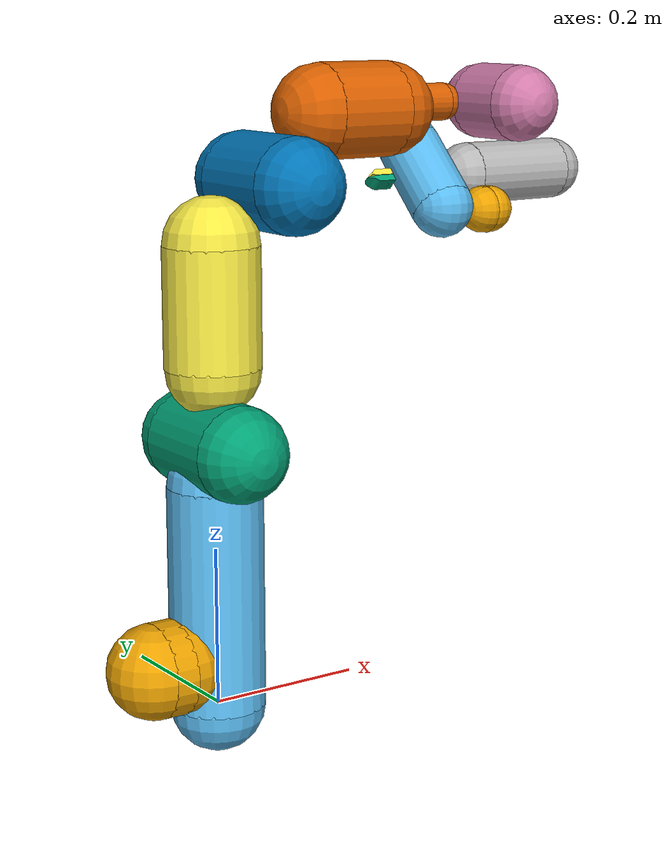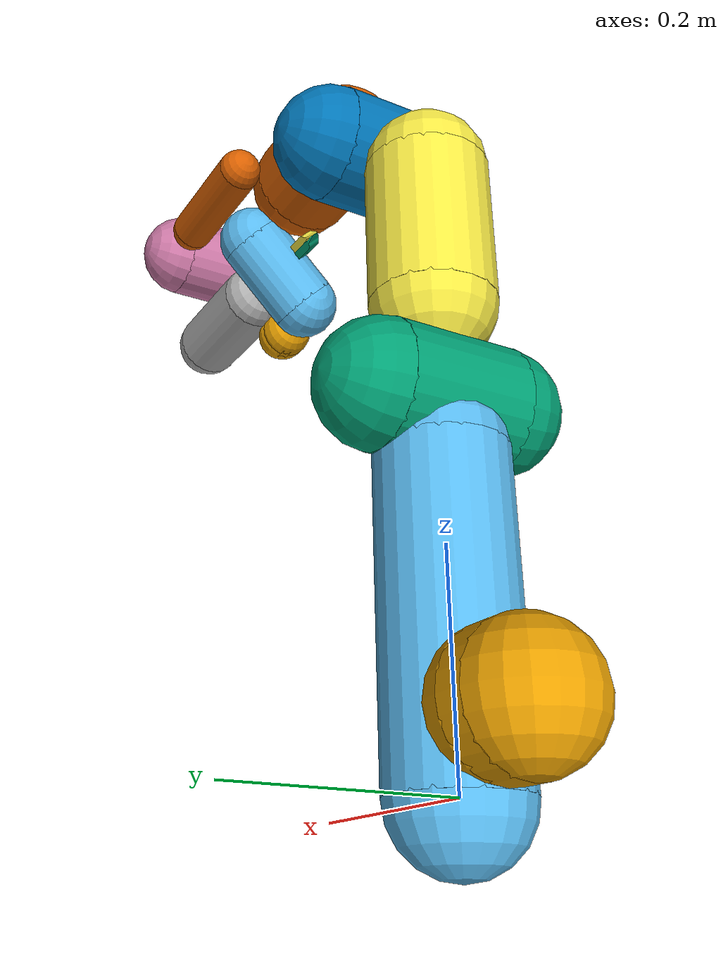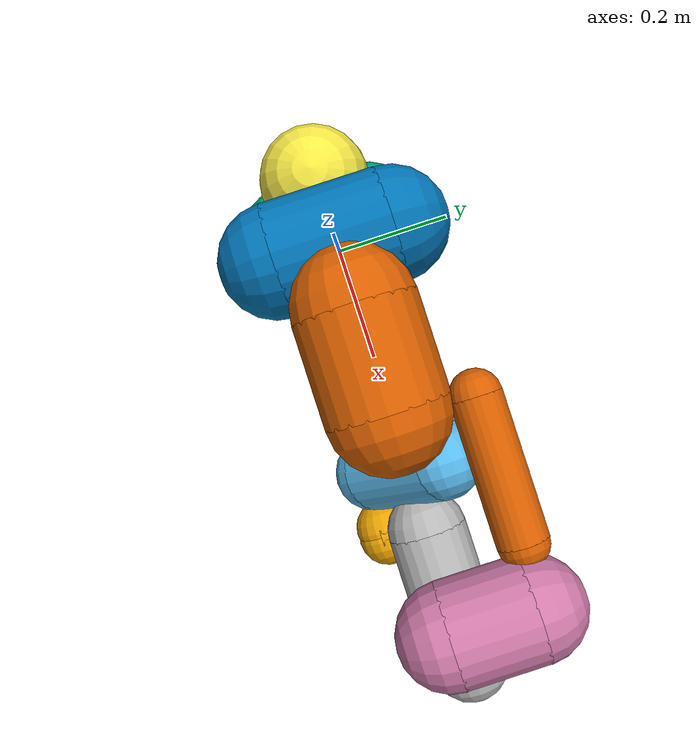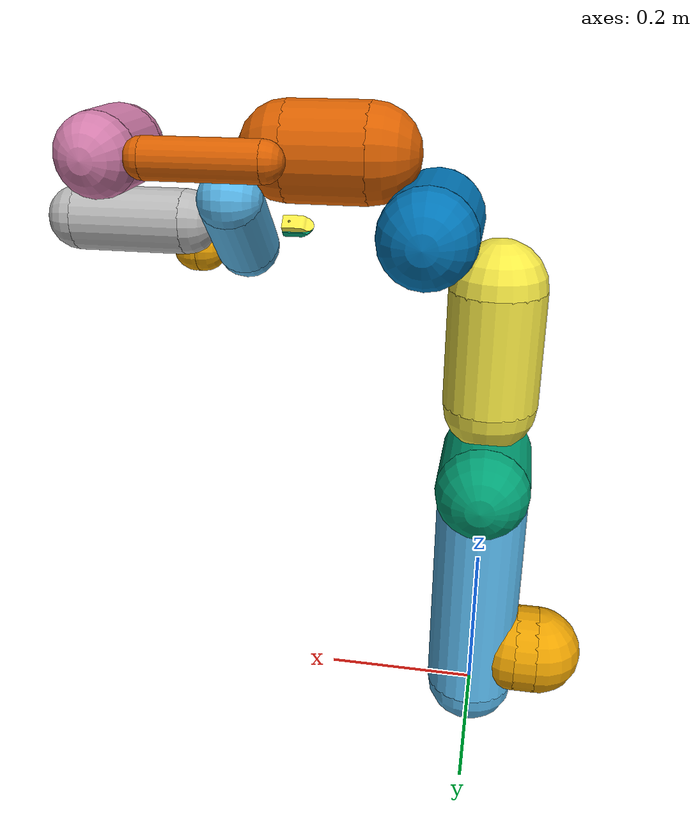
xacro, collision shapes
<?xml version="1.0" encoding="utf-8"?>
<robot xmlns:xacro="http://www.ros.org/wiki/xacro" name="panda">
  <xacro:include filename="$(find franka_description)/robots/panda_arm.xacro"/>
  <xacro:include filename="$(find franka_description)/robots/hand.xacro"/>
  <xacro:panda_arm safety_distance="0.0"/>
  <xacro:hand ns="panda" rpy="0 0 ${-pi/4}" connected_to="panda_link8" safety_distance="0.0"/>
</robot>

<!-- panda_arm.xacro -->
<robot xmlns:xacro="http://www.ros.org/wiki/xacro" name="panda">
  <!-- safety_distance: Minimum safety distance in [m] by which the collision volumes are expanded and which is enforced during robot motions -->
  <!-- arm_id: Namespace of the panda arm. Serves to differentiate between arms in case of multiple instances. -->
  <xacro:macro name="panda_arm" params="arm_id:='panda' description_pkg:='franka_description' connected_to:='' xyz:='0 0 0' rpy:='0 0 0' safety_distance:=0">
    <xacro:unless value="${not connected_to}">
      <joint name="${arm_id}_joint_${connected_to}" type="fixed">
        <parent link="${connected_to}"/>
        <child link="${arm_id}_link0"/>
        <origin rpy="${rpy}" xyz="${xyz}"/>
      </joint>
    </xacro:unless>
    <link name="${arm_id}_link0">
      <visual>
        <geometry>
          <mesh filename="package://${description_pkg}/meshes/visual/link0.dae"/>
        </geometry>
      </visual>
      <collision>
        <origin xyz="-0.075 0 0.06" rpy="0 ${pi/2} 0"/>
        <geometry>
          <cylinder radius="${0.06+safety_distance}" length="0.03" />
        </geometry>
      </collision>
      <collision>
        <origin xyz="-0.06 0 0.06" rpy="0 0 0"/>
        <geometry>
          <sphere radius="${0.06+safety_distance}" />
        </geometry>
      </collision>
      <collision>
        <origin xyz="-0.09 0 0.06" rpy="0 0 0"/>
        <geometry>
          <sphere radius="${0.06+safety_distance}" />
        </geometry>
      </collision>
    </link>
    <link name="${arm_id}_link1">
      <visual>
        <geometry>
          <mesh filename="package://${description_pkg}/meshes/visual/link1.dae"/>
        </geometry>
      </visual>
      <collision>
        <origin xyz="0 0 -0.1915" rpy="0 0 0"/>
        <geometry>
          <cylinder radius="${0.06+safety_distance}" length="0.2830" />
        </geometry>
      </collision>
      <collision>
        <origin xyz="0 0 -0.333" rpy="0 0 0"/>
        <geometry>
          <sphere radius="${0.06+safety_distance}" />
        </geometry>
      </collision>
      <collision>
        <origin xyz="0 0 -0.05" rpy="0 0 0"/>
        <geometry>
          <sphere radius="${0.06+safety_distance}" />
        </geometry>
      </collision>
    </link>
    <joint name="${arm_id}_joint1" type="revolute">
      <safety_controller k_position="100.0" k_velocity="40.0" soft_lower_limit="-2.78" soft_upper_limit="2.78"/>
      <origin rpy="0 0 0" xyz="0 0 0.333"/>
      <parent link="${arm_id}_link0"/>
      <child link="${arm_id}_link1"/>
      <axis xyz="0 0 1"/>
      <limit effort="87" lower="-2.8973" upper="2.8973" velocity="2.1750"/>
    </joint>
    <link name="${arm_id}_link2">
      <visual>
        <geometry>
          <mesh filename="package://${description_pkg}/meshes/visual/link2.dae"/>
        </geometry>
      </visual>
      <collision>
        <origin xyz="0 0 0" rpy="0 0 0"/>
        <geometry>
          <cylinder radius="${0.06+safety_distance}" length="0.12" />
        </geometry>
      </collision>
      <collision>
        <origin xyz="0 0 -0.06" rpy="0 0 0"/>
        <geometry>
          <sphere radius="${0.06+safety_distance}" />
        </geometry>
      </collision>
      <collision>
        <origin xyz="0 0 0.06" rpy="0 0 0"/>
        <geometry>
          <sphere radius="${0.06+safety_distance}" />
        </geometry>
      </collision>
    </link>
    <joint name="${arm_id}_joint2" type="revolute">
      <safety_controller k_position="100.0" k_velocity="40.0" soft_lower_limit="-1.66" soft_upper_limit="1.66"/>
      <origin rpy="${-pi/2} 0 0" xyz="0 0 0"/>
      <parent link="${arm_id}_link1"/>
      <child link="${arm_id}_link2"/>
      <axis xyz="0 0 1"/>
      <limit effort="87" lower="-1.7628" upper="1.7628" velocity="2.1750"/>
    </joint>
    <link name="${arm_id}_link3">
      <visual>
        <geometry>
          <mesh filename="package://${description_pkg}/meshes/visual/link3.dae"/>
        </geometry>
      </visual>
      <collision>
        <origin xyz="0 0 -0.145" rpy="0 0 0"/>
        <geometry>
          <cylinder radius="${0.06+safety_distance}" length="0.15" />
        </geometry>
      </collision>
      <collision>
        <origin xyz="0 0 -0.22" rpy="0 0 0"/>
        <geometry>
          <sphere radius="${0.06+safety_distance}" />
        </geometry>
      </collision>
      <collision>
        <origin xyz="0 0 -0.07" rpy="0 0 0"/>
        <geometry>
          <sphere radius="${0.06+safety_distance}" />
        </geometry>
      </collision>
    </link>
    <joint name="${arm_id}_joint3" type="revolute">
      <safety_controller k_position="100.0" k_velocity="40.0" soft_lower_limit="-2.78" soft_upper_limit="2.78"/>
      <origin rpy="${pi/2} 0 0" xyz="0 -0.316 0"/>
      <parent link="${arm_id}_link2"/>
      <child link="${arm_id}_link3"/>
      <axis xyz="0 0 1"/>
      <limit effort="87" lower="-2.8973" upper="2.8973" velocity="2.1750"/>
    </joint>
    <link name="${arm_id}_link4">
      <visual>
        <geometry>
          <mesh filename="package://${description_pkg}/meshes/visual/link4.dae"/>
        </geometry>
      </visual>
      <collision>
        <origin xyz="0 0 0" rpy="0 0 0"/>
        <geometry>
          <cylinder radius="${0.06+safety_distance}" length="0.12" />
        </geometry>
      </collision>
      <collision>
        <origin xyz="0 0 0.06" rpy="0 0 0"/>
        <geometry>
          <sphere radius="${0.06+safety_distance}" />
        </geometry>
      </collision>
      <collision>
        <origin xyz="0 0 -0.06" rpy="0 0 0"/>
        <geometry>
          <sphere radius="${0.06+safety_distance}" />
        </geometry>
      </collision>
    </link>
    <joint name="${arm_id}_joint4" type="revolute">
      <safety_controller k_position="100.0" k_velocity="40.0" soft_lower_limit="-2.95" soft_upper_limit="-0.15"/>
      <origin rpy="${pi/2} 0 0" xyz="0.0825 0 0"/>
      <parent link="${arm_id}_link3"/>
      <child link="${arm_id}_link4"/>
      <axis xyz="0 0 1"/>
      <limit effort="87" lower="-3.0718" upper="-0.0698" velocity="2.1750"/>
    </joint>
    <link name="${arm_id}_link5">
      <visual>
        <geometry>
          <mesh filename="package://${description_pkg}/meshes/visual/link5.dae"/>
        </geometry>
      </visual>
      <collision>
        <origin xyz="0 0 -0.26" rpy="0 0 0"/>
        <geometry>
          <cylinder radius="${0.06+safety_distance}" length="0.1" />
        </geometry>
      </collision>
      <collision>
        <origin xyz="0 0 -0.31" rpy="0 0 0"/>
        <geometry>
          <sphere radius="${0.06+safety_distance}" />
        </geometry>
      </collision>
      <collision>
        <origin xyz="0 0 -0.21" rpy="0 0 0"/>
        <geometry>
          <sphere radius="${0.06+safety_distance}" />
        </geometry>
      </collision>
      <collision>
        <origin xyz="0 0.08 -0.13" rpy="0 0 0"/>
        <geometry>
          <cylinder radius="${0.025+safety_distance}" length="0.14" />
        </geometry>
      </collision>
      <collision>
        <origin xyz="0 0.08 -0.06" rpy="0 0 0"/>
        <geometry>
          <sphere radius="${0.025+safety_distance}" />
        </geometry>
      </collision>
      <collision>
        <origin xyz="0 0.08 -0.20" rpy="0 0 0"/>
        <geometry>
          <sphere radius="${0.025+safety_distance}" />
        </geometry>
      </collision>

    </link>
    <joint name="${arm_id}_joint5" type="revolute">
      <safety_controller k_position="100.0" k_velocity="40.0" soft_lower_limit="-2.78" soft_upper_limit="2.78"/>
      <origin rpy="${-pi/2} 0 0" xyz="-0.0825 0.384 0"/>
      <parent link="${arm_id}_link4"/>
      <child link="${arm_id}_link5"/>
      <axis xyz="0 0 1"/>
      <limit effort="12" lower="-2.8973" upper="2.8973" velocity="2.6100"/>
    </joint>
    <link name="${arm_id}_link6">
      <visual>
        <geometry>
          <mesh filename="package://${description_pkg}/meshes/visual/link6.dae"/>
        </geometry>
      </visual>
      <collision>
        <origin xyz="0 0 -0.03" rpy="0 0 0"/>
        <geometry>
          <cylinder radius="${0.05+safety_distance}" length="0.08" />
        </geometry>
      </collision>
      <collision>
        <origin xyz="0 0 0.01" rpy="0 0 0"/>
        <geometry>
          <sphere radius="${0.05+safety_distance}" />
        </geometry>
      </collision>
      <collision>
        <origin xyz="0 0 -0.07" rpy="0 0 0"/>
        <geometry>
          <sphere radius="${0.05+safety_distance}" />
        </geometry>
      </collision>
    </link>
    <joint name="${arm_id}_joint6" type="revolute">
      <safety_controller k_position="100.0" k_velocity="40.0" soft_lower_limit="0.1" soft_upper_limit="3.64"/>
      <origin rpy="${pi/2} 0 0" xyz="0 0 0"/>
      <parent link="${arm_id}_link5"/>
      <child link="${arm_id}_link6"/>
      <axis xyz="0 0 1"/>
      <limit effort="12" lower="-0.0175" upper="3.7525" velocity="2.6100"/>
    </joint>
    <link name="${arm_id}_link7">
      <visual>
        <geometry>
          <mesh filename="package://${description_pkg}/meshes/visual/link7.dae"/>
        </geometry>
      </visual>
      <collision>
        <origin xyz="0 0 0.01" rpy="0 0 0"/>
        <geometry>
          <cylinder radius="${0.04+safety_distance}" length="0.14" />
        </geometry>
      </collision>
      <collision>
        <origin xyz="0 0 0.08" rpy="0 0 0"/>
        <geometry>
          <sphere radius="${0.04+safety_distance}"  />
        </geometry>
      </collision>
      <collision>
        <origin xyz="0 0 -0.06" rpy="0 0 0"/>
        <geometry>
          <sphere radius="${0.04+safety_distance}"  />
        </geometry>
      </collision>
    </link>
    <joint name="${arm_id}_joint7" type="revolute">
      <safety_controller k_position="100.0" k_velocity="40.0" soft_lower_limit="-2.78" soft_upper_limit="2.78"/>
      <origin rpy="${pi/2} 0 0" xyz="0.088 0 0"/>
      <parent link="${arm_id}_link6"/>
      <child link="${arm_id}_link7"/>
      <axis xyz="0 0 1"/>
      <limit effort="12" lower="-2.8973" upper="2.8973" velocity="2.6100"/>
    </joint>
    <link name="${arm_id}_link8">
      <collision>
        <origin xyz="0.0424 0.0424 -0.0250" rpy="${pi} ${pi/2} ${pi/2}"/>
        <geometry>
          <cylinder radius="${0.03+safety_distance}"  length="0.01" />
        </geometry>
      </collision>
      <collision>
        <origin xyz="0.0424 0.0424 -0.02" rpy="0 0 0"/>
        <geometry>
          <sphere radius="${0.03+safety_distance}"  />
        </geometry>
      </collision>
      <collision>
        <origin xyz="0.0424 0.0424 -0.03" rpy="0 0 0"/>
        <geometry>
          <sphere radius="${0.03+safety_distance}"  />
        </geometry>
      </collision>
    </link>
    <joint name="${arm_id}_joint8" type="fixed">
      <origin rpy="0 0 0" xyz="0 0 0.107"/>
      <parent link="${arm_id}_link7"/>
      <child link="${arm_id}_link8"/>
    </joint>
  </xacro:macro>
</robot>

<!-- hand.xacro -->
<robot xmlns:xacro="http://www.ros.org/wiki/xacro" name="hand">
  <!-- safety_distance: Minimum safety distance in [m] by which the collision volumes are expanded and which is enforced during robot motions -->
  <xacro:macro name="hand" params="connected_to:='' ns:='' rpy:='0 0 0' xyz:='0 0 0' safety_distance:=0">
    <xacro:unless value="${connected_to == ''}">
      <joint name="${ns}_hand_joint" type="fixed">
        <parent link="${connected_to}"/>
        <child link="${ns}_hand"/>
        <origin xyz="${xyz}" rpy="${rpy}"/>
      </joint>
    </xacro:unless>
    <link name="${ns}_hand">
      <visual>
        <geometry>
          <mesh filename="package://franka_description/meshes/visual/hand.dae"/>
        </geometry>
      </visual>
      <collision>
        <origin xyz="0 0 0.04" rpy="0 ${pi/2} ${pi/2}"/>
        <geometry>
          <cylinder radius="${0.04+safety_distance}" length="0.1" />
        </geometry>
      </collision>
      <collision>
        <origin xyz="0 -0.05 0.04" rpy="0 0 0"/>
        <geometry>
          <sphere radius="${0.04+safety_distance}"  />
        </geometry>
      </collision>
      <collision>
        <origin xyz="0 0.05 0.04" rpy="0 0 0"/>
        <geometry>
          <sphere radius="${0.04+safety_distance}"  />
        </geometry>
      </collision>
    </link>
    <link name="${ns}_leftfinger">
      <visual>
        <geometry>
          <mesh filename="package://franka_description/meshes/visual/Finger_Robothon_3.dae" scale="0.001 0.001 0.001"/>
        </geometry>
      </visual>
      <collision>
        <origin xyz="-0.0045 0.0045 0.05" rpy="${pi/2} ${pi} 0"/>
        <geometry>
          <mesh filename="package://franka_description/meshes/collision/Finger_Robothon_3l.stl" scale="0.001 0.001 0.001"/>
        </geometry>
      </collision>
    </link>
    <link name="${ns}_rightfinger">
      <visual>
        <origin xyz="0 0 0" rpy="0 0 ${pi}"/>
        <geometry>
          <mesh filename="package://franka_description/meshes/visual/Finger_Robothon_3.dae" scale="0.001 0.001 0.001"/>
        </geometry>
      </visual>
      <collision>
       <origin xyz="0.0045 -0.0045 0.05" rpy="${pi/2} ${pi} ${pi}"/>
        <geometry>
          <mesh filename="package://franka_description/meshes/collision/Finger_Robothon_3r.stl" scale="0.001 0.001 0.001"/>
        </geometry>
      </collision>
   </link>
    <joint name="${ns}_finger_joint1" type="prismatic">
      <parent link="${ns}_hand"/>
      <child link="${ns}_leftfinger"/>
      <origin xyz="0 0 0.0584" rpy="0 0 0"/>
      <axis xyz="0 1 0"/>
      <limit effort="20" lower="0.0" upper="0.04" velocity="0.2"/>
    </joint>
    <joint name="${ns}_finger_joint2" type="prismatic">
      <parent link="${ns}_hand"/>
      <child link="${ns}_rightfinger"/>
      <origin xyz="0 0 0.0584" rpy="0 0 0"/>
      <axis xyz="0 -1 0"/>
      <limit effort="20" lower="0.0" upper="0.04" velocity="0.2"/>
      <mimic joint="${ns}_finger_joint1" />
    </joint>
  </xacro:macro>
</robot>
